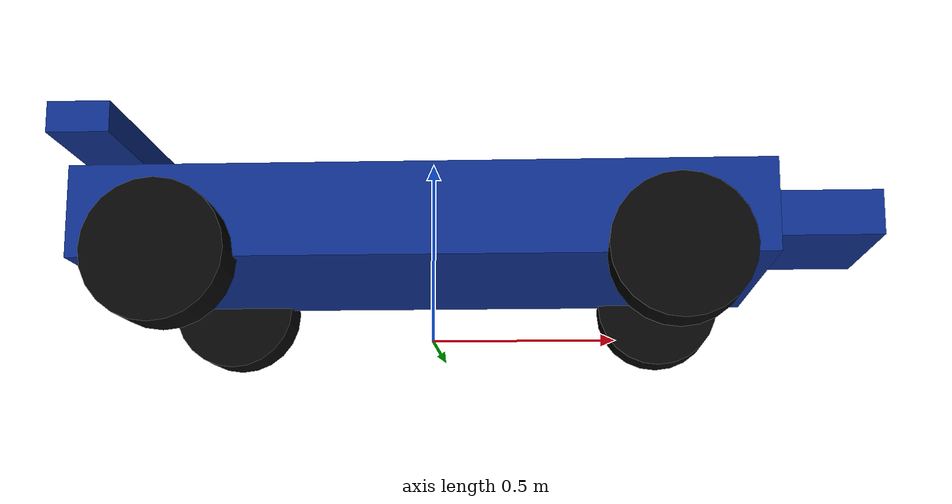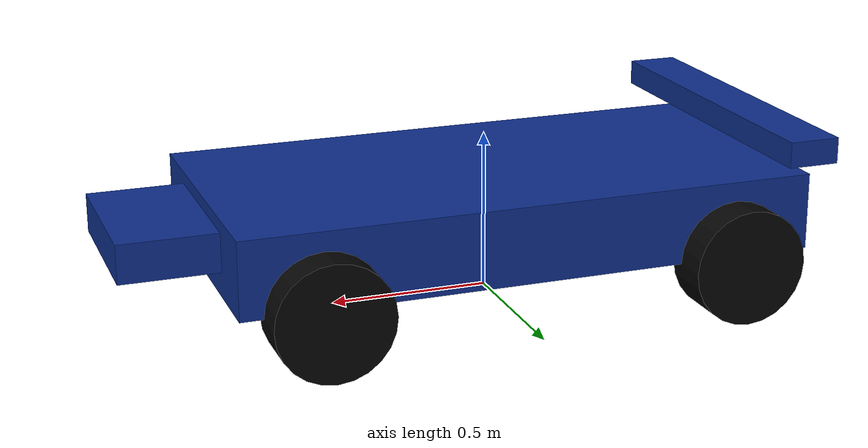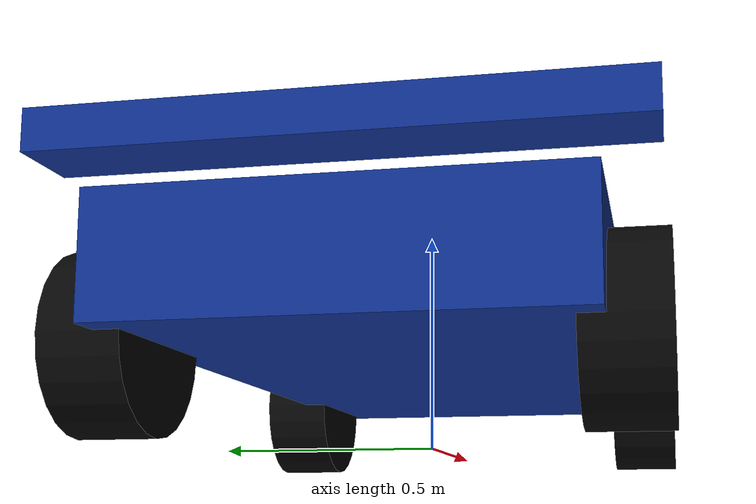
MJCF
<mujoco model="simple_car">
  <default>
    <geom friction="1.2 0.02 0.001" density="600"/>
    <joint damping="0.1"/>
  </default>

  <asset>
    <material name="chassis_blue" rgba="0.05 0.18 0.55 1"/>
    <material name="wheel_dark" rgba="0.02 0.02 0.025 1"/>
  </asset>

  <worldbody>
    <body name="car" pos="0 0 0.28">
      <freejoint name="root"/>
      <geom name="chassis" type="box" size="0.9 0.45 0.12" material="chassis_blue"/>
      <geom name="nose" type="box" pos="0.75 0 0.02" size="0.45 0.25 0.06" material="chassis_blue"/>
      <geom name="rear_wing" type="box" pos="-0.85 0 0.22" size="0.08 0.55 0.04" material="chassis_blue"/>

      <body name="front_left_wheel" pos="0.65 0.48 -0.12">
        <joint name="front_left_spin" type="hinge" axis="0 1 0"/>
        <geom type="cylinder" size="0.18 0.08" euler="90 0 0" material="wheel_dark"/>
      </body>
      <body name="front_right_wheel" pos="0.65 -0.48 -0.12">
        <joint name="front_right_spin" type="hinge" axis="0 1 0"/>
        <geom type="cylinder" size="0.18 0.08" euler="90 0 0" material="wheel_dark"/>
      </body>
      <body name="rear_left_wheel" pos="-0.65 0.48 -0.12">
        <joint name="rear_left_spin" type="hinge" axis="0 1 0"/>
        <geom type="cylinder" size="0.18 0.08" euler="90 0 0" material="wheel_dark"/>
      </body>
      <body name="rear_right_wheel" pos="-0.65 -0.48 -0.12">
        <joint name="rear_right_spin" type="hinge" axis="0 1 0"/>
        <geom type="cylinder" size="0.18 0.08" euler="90 0 0" material="wheel_dark"/>
      </body>
    </body>
  </worldbody>
</mujoco>
